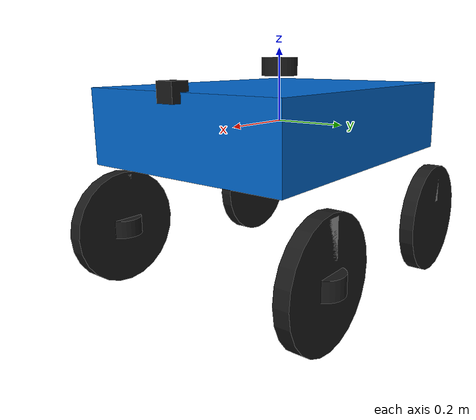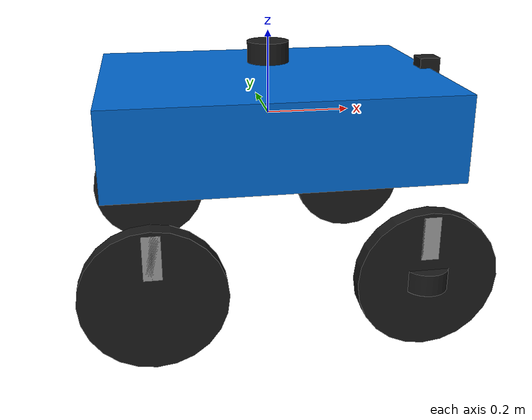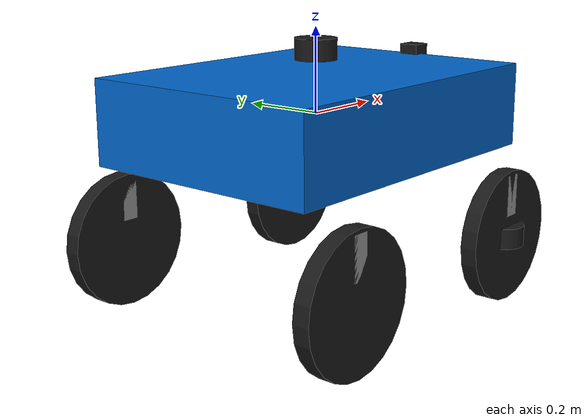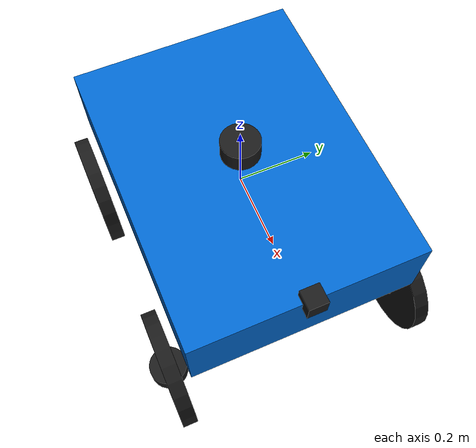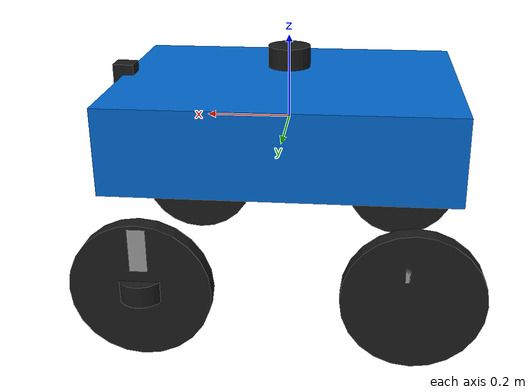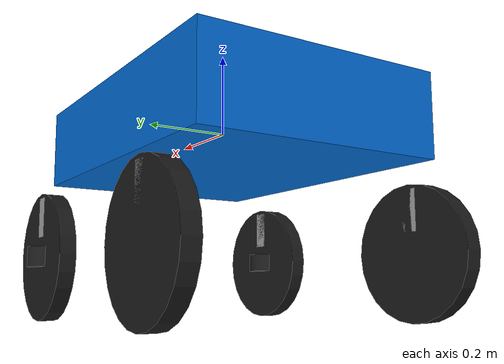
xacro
<?xml version="1.0"?>
<robot name="simple_car" xmlns:xacro="http://www.ros.org/wiki/xacro">

    <xacro:property name="body_len" value="0.8" />
    <xacro:property name="body_width" value="0.6" />
    <xacro:property name="body_height" value="0.2" />

    <xacro:property name="wheel_radius" value="0.16" />
    <xacro:property name="wheel_width" value="0.04" />
    <xacro:property name="caster_radius" value="0.16" />

    <xacro:property name="suspension_travel" value="0.10" />
    <xacro:property name="mass_body" value="10.0" />
    <xacro:property name="mass_wheel" value="1.0" />
    <xacro:property name="mass_caster" value="1.0" />
    <xacro:property name="mass_suspension" value="0.4" />

    <xacro:macro name="box_inertial" params="mass x y z">
        <inertial>
            <mass value="${mass}" />
            <inertia ixx="${(1/12) * mass * (y*y + z*z)}" ixy="0.0" ixz="0.0"
                     iyy="${(1/12) * mass * (x*x + z*z)}" iyz="0.0"
                     izz="${(1/12) * mass * (x*x + y*y)}" />
        </inertial>
    </xacro:macro>

    <xacro:macro name="cylinder_inertial" params="mass r h">
        <inertial>
            <mass value="${mass}" />
            <inertia ixx="${(1/12) * mass * (3*r*r + h*h)}" ixy="0.0" ixz="0.0"
                     iyy="${(1/12) * mass * (3*r*r + h*h)}" iyz="0.0"
                     izz="${(1/2) * mass * r*r}" />
        </inertial>
    </xacro:macro>

    <xacro:macro name="sphere_inertial" params="mass r">
        <inertial>
            <mass value="${mass}" />
            <inertia ixx="${(2/5) * mass * r*r}" ixy="0.0" ixz="0.0"
                     iyy="${(2/5) * mass * r*r}" iyz="0.0"
                     izz="${(2/5) * mass * r*r}" />
        </inertial>
    </xacro:macro>

    <material name="blue"><color rgba="0.0 0.4 0.8 1.0"/></material>
    <material name="black"><color rgba="0.1 0.1 0.1 1.0"/></material>
    <material name="grey"><color rgba="0.6 0.6 0.6 1.0"/></material>

    <link name="dummy_root"/>
    <joint name="dummy_joint" type="fixed">
        <parent link="dummy_root"/>
        <child link="base_link"/>
    </joint>

    <!-- Base Link -->
    <link name="base_link">
        <visual>
            <origin xyz="0 0 0" rpy="0 0 0"/>
            <geometry><box size="${body_len} ${body_width} ${body_height}"/></geometry>
            <material name="blue"/>
        </visual>
        <collision>
            <origin xyz="0 0 0" rpy="0 0 0"/>
            <geometry><box size="${body_len} ${body_width} ${body_height}"/></geometry>
        </collision>
        <xacro:box_inertial mass="${mass_body}" x="${body_len}" y="${body_width}" z="${body_height}" />
    </link>

    <!-- IMU Sensor Link -->
    <link name="imu_link"/>
    <joint name="imu_joint" type="fixed">
        <parent link="base_link"/>
        <child link="imu_link"/>
        <origin xyz="0 0 0" rpy="0 0 0"/>
    </joint>
    <gazebo reference="imu_link">
        <sensor name="imu_sensor" type="imu">
            <always_on>1</always_on>
            <update_rate>100</update_rate>
            <visualize>true</visualize>
            <topic>/imu</topic>
        <imu>
            <noise>
                <!-- 角速度噪声 -->
                <angular_velocity>
                    <noise type="gaussian">
                        <mean>0.0</mean>          <!-- 零均值白噪声 -->
                        <stddev>0.0002</stddev>   <!-- 白噪声标准差 (rad/s) -->
                        <bias_mean>0.0</bias_mean>      <!-- 偏置均值 -->
                        <bias_stddev>0.0001</bias_stddev> <!-- 偏置随机游走标准差 (rad/s²) -->
                    </noise>
                </angular_velocity>

                <!-- 线性加速度噪声 -->
                <linear_acceleration>
                    <noise type="gaussian">
                        <mean>0.0</mean>          <!-- 零均值白噪声 -->
                        <stddev>0.01</stddev>     <!-- 白噪声标准差 (m/s²) -->
                        <bias_mean>0.0</bias_mean>      <!-- 偏置均值 -->
                        <bias_stddev>0.001</bias_stddev> <!-- 偏置随机游走标准差 (m/s³) -->
                    </noise>
                </linear_acceleration>
            </noise>
        </imu>
        </sensor>
    </gazebo>

    <!-- Suspension Macro -->
    <xacro:macro name="suspension" params="prefix xyz_offset">
        <link name="suspension_${prefix}_link">
            <visual>
                <geometry><box size="0.04 0.04 0.10"/></geometry>
                <material name="grey"/>
            </visual>
            <xacro:box_inertial mass="${mass_suspension}" x="0.04" y="0.04" z="0.10"/>
        </link>

        <joint name="suspension_${prefix}_joint" type="prismatic">
            <parent link="base_link"/>
            <child link="suspension_${prefix}_link"/>
            <origin xyz="${xyz_offset}" rpy="0 0 0"/>
            <axis xyz="0 0 1"/>
            <limit lower="-${suspension_travel}" upper="${suspension_travel}" effort="500.0" velocity="10.0"/>
            <!-- Add spring and damping -->
            <dynamics damping="50.0" friction="0.1" spring_stiffness="2000.0" spring_reference="0.0"/>
        </joint>
    </xacro:macro>

    <!-- Rear Wheels Macro (Driven) -->
    <xacro:macro name="rear_wheel" params="prefix xyz_offset">
        <xacro:suspension prefix="${prefix}" xyz_offset="${xyz_offset}"/>

        <link name="wheel_${prefix}_link">
            <visual>
                <origin rpy="${pi/2} 0 0"/>
                <geometry><cylinder radius="${wheel_radius}" length="${wheel_width}"/></geometry>
                <material name="black"/>
            </visual>
            <collision>
                <origin rpy="${pi/2} 0 0"/>
                <!-- Using cylinder or sphere for stability -->
                <geometry><sphere radius="${wheel_radius}"/></geometry>
            </collision>
            <xacro:cylinder_inertial mass="${mass_wheel}" r="${wheel_radius}" h="${wheel_width}"/>
        </link>

        <joint name="wheel_${prefix}_joint" type="continuous">
            <parent link="suspension_${prefix}_link"/>
            <child link="wheel_${prefix}_link"/>
            <origin xyz="0 0 -0.10" rpy="0 0 0"/>
            <axis xyz="0 1 0"/>
            <limit effort="500.0" velocity="50.0"/>
            <dynamics damping="0.1" friction="0.05"/>
        </joint>

        <gazebo reference="wheel_${prefix}_link">
            <mu1>0.05</mu1>
            <mu2>1.5</mu2>
        </gazebo>
    </xacro:macro>

    <!-- Front Steerable Wheels Macro -->
    <xacro:macro name="front_steer_wheel" params="prefix xyz_offset">
        <xacro:suspension prefix="${prefix}" xyz_offset="${xyz_offset}"/>

        <link name="steer_${prefix}_link">
            <visual>
                <geometry><cylinder radius="0.05" length="0.05"/></geometry>
                <material name="black"/>
            </visual>
            <xacro:cylinder_inertial mass="0.5" r="0.05" h="0.05"/>
        </link>

        <joint name="steer_${prefix}_joint" type="revolute">
            <parent link="suspension_${prefix}_link"/>
            <child link="steer_${prefix}_link"/>
            <origin xyz="0 0 -0.10" rpy="0 0 0"/>
            <axis xyz="0 0 1"/>
            <limit lower="-0.6" upper="0.6" effort="500.0" velocity="10.0"/>
            <dynamics damping="5.0" friction="1.0"/>
        </joint>

        <link name="wheel_${prefix}_link">
            <visual>
                <origin rpy="${pi/2} 0 0"/>
                <geometry><cylinder radius="${wheel_radius}" length="${wheel_width}"/></geometry>
                <material name="black"/>
            </visual>
            <collision>
                <origin rpy="${pi/2} 0 0"/>
                <geometry><sphere radius="${wheel_radius}"/></geometry>
            </collision>
            <xacro:cylinder_inertial mass="${mass_wheel}" r="${wheel_radius}" h="${wheel_width}"/>
        </link>

        <joint name="wheel_${prefix}_joint" type="continuous">
            <parent link="steer_${prefix}_link"/>
            <child link="wheel_${prefix}_link"/>
            <origin xyz="0 0 0" rpy="0 0 0"/>
            <axis xyz="0 1 0"/>
            <limit effort="500.0" velocity="50.0"/>
            <dynamics damping="0.1" friction="0.05"/>
        </joint>

        <gazebo reference="wheel_${prefix}_link">
            <mu1>1.0</mu1>
            <mu2>1.0</mu2>
        </gazebo>
    </xacro:macro>

    <!-- Instantiate 4 Wheels/Casters -->
    <xacro:front_steer_wheel prefix="fl" xyz_offset="0.30 0.34 -0.20"/>
    <xacro:front_steer_wheel prefix="fr" xyz_offset="0.30 -0.34 -0.20"/>
    <xacro:rear_wheel prefix="rl" xyz_offset="-0.30 0.34 -0.20"/>
    <xacro:rear_wheel prefix="rr" xyz_offset="-0.30 -0.34 -0.20"/>

    <!-- Lidar Link and Sensor -->
    <link name="lidar_link">
        <visual>
            <geometry><cylinder radius="0.05" length="0.05"/></geometry>
            <material name="black"/>
        </visual>
        <collision>
            <geometry><cylinder radius="0.05" length="0.05"/></geometry>
        </collision>
        <xacro:cylinder_inertial mass="0.1" r="0.05" h="0.05"/>
    </link>

    <joint name="lidar_joint" type="fixed">
        <parent link="base_link"/>
        <child link="lidar_link"/>
        <origin xyz="0.0 0 0.15" rpy="0 0 0"/>
    </joint>

    <gazebo reference="lidar_link">
        <!-- Lidar Sensor Disabled -->

        <sensor name='lidar_sensor' type='gpu_lidar'>
            <pose>0 0 0 0 0 0</pose>
            <topic>/scan</topic>
            <update_rate>10</update_rate>
            <ray>
                <scan>
                    <horizontal>
                        <samples>360</samples>
                        <resolution>1</resolution>
                        <min_angle>-3.14159</min_angle>
                        <max_angle>3.14159</max_angle>
                    </horizontal>
                    <vertical>
                        <samples>1</samples>
                        <resolution>0.01</resolution>
                        <min_angle>0</min_angle>
                        <max_angle>0</max_angle>
                    </vertical>
                </scan>
                <range>
                    <min>0.08</min>
                    <max>10.0</max>
                    <resolution>0.01</resolution>
                </range>
            </ray>
            <always_on>1</always_on>
            <visualize>true</visualize>
        </sensor>

    </gazebo>

    <!-- Camera Link and Sensor -->
    <link name="camera_link">
        <visual>
            <geometry><box size="0.05 0.05 0.05"/></geometry>
            <material name="black"/>
        </visual>
        <collision>
            <geometry><box size="0.05 0.05 0.05"/></geometry>
        </collision>
        <xacro:box_inertial mass="0.1" x="0.05" y="0.05" z="0.05"/>
    </link>

    <joint name="camera_joint" type="fixed">
        <parent link="base_link"/>
        <child link="camera_link"/>
        <origin xyz="0.4 0 0.1" rpy="0 0 0"/>
    </joint>

    <gazebo reference="camera_link">
        <!-- Camera Sensor Disabled -->

        <sensor name="camera_sensor" type="camera">
            <topic>/camera/image_raw</topic>
            <update_rate>30</update_rate>
            <camera>
                <horizontal_fov>1.047</horizontal_fov>
                <image>
                    <width>640</width>
                    <height>480</height>
                    <format>R8G8B8</format>
                </image>
                <clip>
                    <near>0.1</near>
                    <far>100</far>
                </clip>
            </camera>
            <always_on>1</always_on>
            <visualize>true</visualize>
        </sensor>

    </gazebo>

    <!-- Gazebo Plugins -->
    <gazebo>
        <!-- Apply Joint Force for rear wheels -->
        <!-- 使用 Joint Controller 进行速度控制 (新增) -->
        <plugin filename="libignition-gazebo6-joint-controller-system.so" name="ignition::gazebo::systems::JointController">
            <joint_name>wheel_rl_joint</joint_name>
            <initial_velocity>0.0</initial_velocity>
            <p_gain>10.0</p_gain>
            <i_gain>0.1</i_gain>
            <d_gain>0.0</d_gain>
        </plugin>
        <plugin filename="libignition-gazebo6-joint-controller-system.so" name="ignition::gazebo::systems::JointController">
            <joint_name>wheel_rr_joint</joint_name>
            <initial_velocity>0.0</initial_velocity>
            <p_gain>10.0</p_gain>
            <i_gain>0.1</i_gain>
            <d_gain>0.0</d_gain>
        </plugin>

        <!-- Steering Position Controllers -->
        <plugin filename="libignition-gazebo-joint-position-controller-system.so" name="ignition::gazebo::systems::JointPositionController">
            <joint_name>steer_fl_joint</joint_name>
            <p_gain>15.0</p_gain>
            <i_gain>0.01</i_gain>
            <d_gain>0.05</d_gain>
            <topic>/cmd_pos_fl</topic>
        </plugin>

        <plugin filename="libignition-gazebo-joint-position-controller-system.so" name="ignition::gazebo::systems::JointPositionController">
            <joint_name>steer_fr_joint</joint_name>
            <p_gain>15.0</p_gain>
            <i_gain>0.01</i_gain>
            <d_gain>0.05</d_gain>
            <topic>/cmd_pos_fr</topic>
        </plugin>

        <!-- Odometry Publisher (Provides Ground Truth position, velocity, heading) -->
        <plugin filename="libignition-gazebo-odometry-publisher-system.so" name="ignition::gazebo::systems::OdometryPublisher">
            <odom_publish_frequency>100</odom_publish_frequency>
            <odom_topic>/model/simple_car/odometry</odom_topic>
            <odom_frame>odom</odom_frame>
            <robot_base_frame>dummy_root</robot_base_frame>
            <dimensions>3</dimensions>
        </plugin>

        <!-- IMU System Plugin -->
        <plugin filename="libignition-gazebo-imu-system.so" name="ignition::gazebo::systems::Imu">
        </plugin>

        <!-- Joint State Publisher (Encoders for rear wheels and suspensions) -->
        <plugin filename="libignition-gazebo-joint-state-publisher-system.so" name="ignition::gazebo::systems::JointStatePublisher">
            <update_frequency>100</update_frequency>
            <topic>/model/simple_car/joint_states</topic>
            <joint_name>wheel_rl_joint</joint_name>
            <joint_name>wheel_rr_joint</joint_name>
            <joint_name>steer_fl_joint</joint_name>
            <joint_name>steer_fr_joint</joint_name>
            <joint_name>wheel_fl_joint</joint_name>
            <joint_name>wheel_fr_joint</joint_name>
            <joint_name>suspension_fl_joint</joint_name>
            <joint_name>suspension_fr_joint</joint_name>
            <joint_name>suspension_rl_joint</joint_name>
            <joint_name>suspension_rr_joint</joint_name>
        </plugin>
    </gazebo>

</robot>
